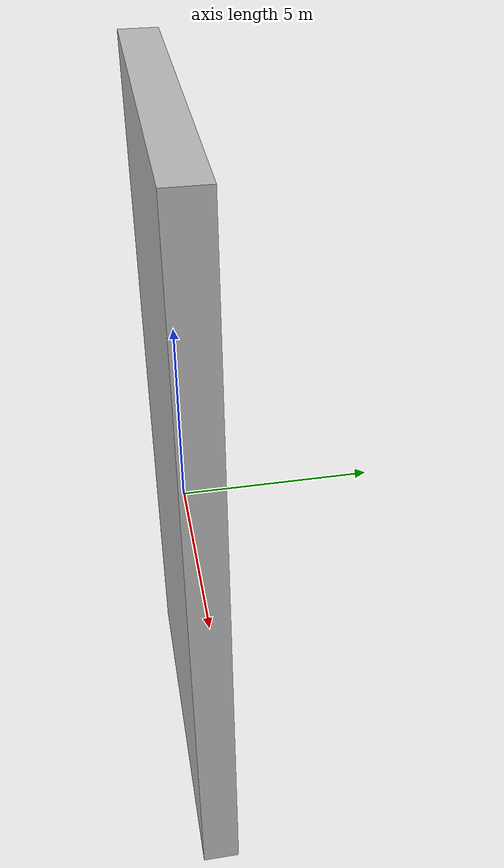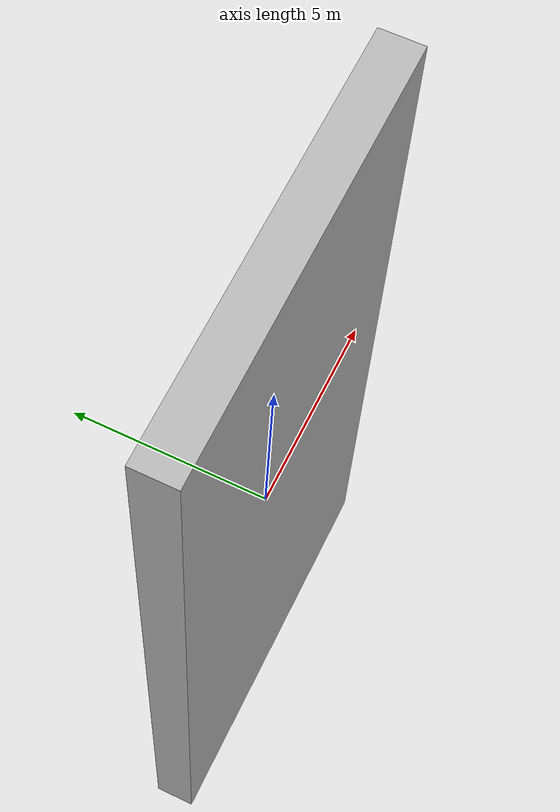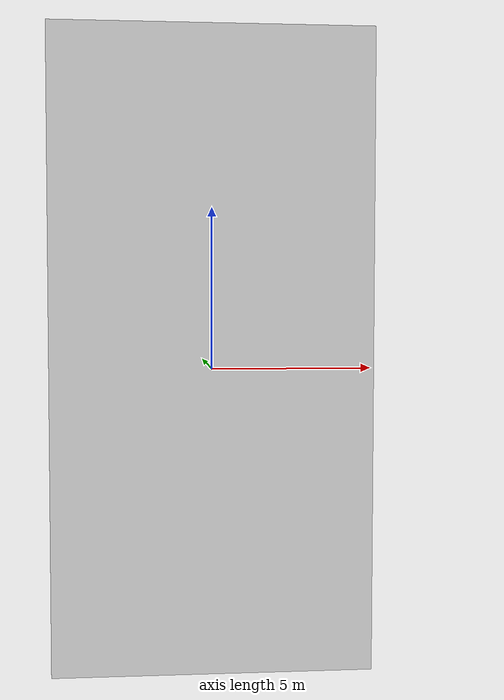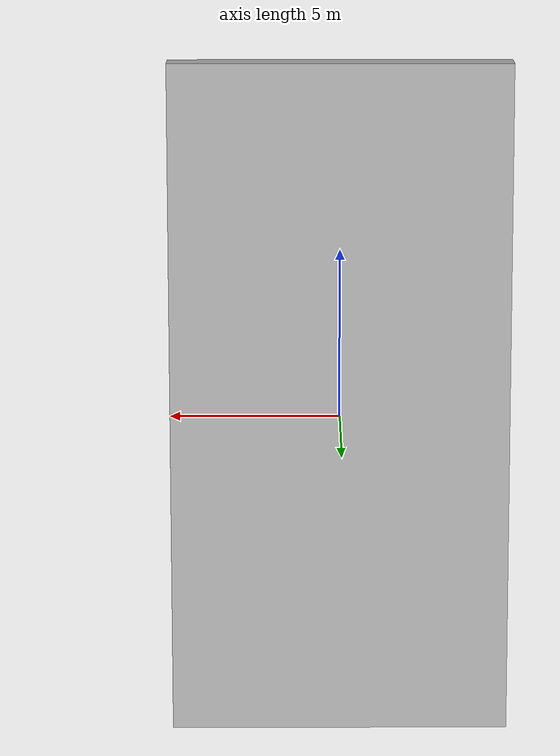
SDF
<?xml version="1.0" ?>
<sdf version="1.4">
  <model name="box">
    <pose>0 0 0.5 0 0 0</pose>
    <link name="link">
      <collision name="collision">
        <geometry>
          <box>
            <size>10 1 20</size>
          </box>
        </geometry>
      </collision>
      <visual name="visual">
        <geometry>
          <box>
            <size>10 1 20</size>
          </box>
        </geometry>
        <material>
          <script>Gazebo/WoodPallet</script>
        </material>
      </visual>
    </link>
  </model>
</sdf>
